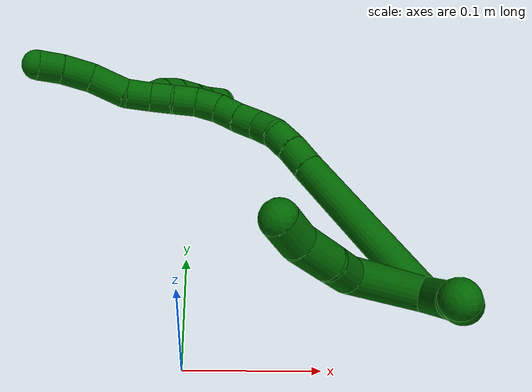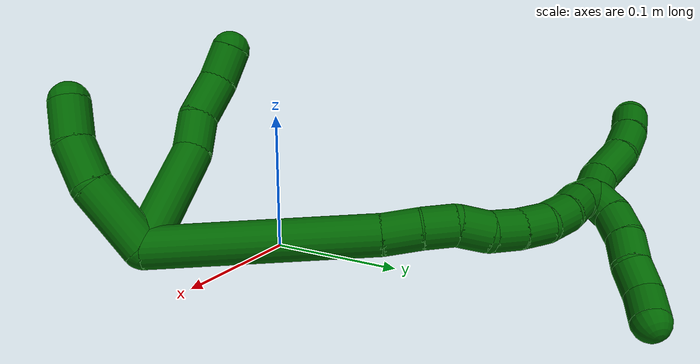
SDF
<sdf version="1.7">
 <world name="default">
  <model name="6">
   <static>0</static>
   <link name="6">
    <collision name="collision-cylinder-e_1_2_8">
     <pose>-0.010868 0.011911 -0.033235 -2.79746 -0.298627 1.42699</pose>
     <geometry><cylinder><radius>0.0125</radius><length>0.073879</length></cylinder></geometry>
     <surface>
      <friction><ode><mu>1.16</mu><mu2>1.16</mu2><slip1>0</slip1><slip2>0</slip2></ode></friction>
      <contact><ode><kp>1e+06</kp><kd>1</kd><max_vel>0</max_vel><min_depth>0.001</min_depth></ode></contact>
     </surface>
    </collision>
    <visual name="visual-cylinder-e_1_2_8">
     <pose>-0.010868 0.011911 -0.033235 -2.79746 -0.298627 1.42699</pose>
     <geometry><cylinder><radius>0.0125</radius><length>0.073879</length></cylinder></geometry>
     <material><ambient>0 0.392157 0.003922 1</ambient></material>
    </visual>
    <collision name="collision-cylinder-e_2_8_9">
     <pose>-0.027231 0.023999 -0.077381 -3.12541 -0.466478 3.0735</pose>
     <geometry><cylinder><radius>0.0125</radius><length>0.024437</length></cylinder></geometry>
     <surface>
      <friction><ode><mu>1.16</mu><mu2>1.16</mu2><slip1>0</slip1><slip2>0</slip2></ode></friction>
      <contact><ode><kp>1e+06</kp><kd>1</kd><max_vel>0</max_vel><min_depth>0.001</min_depth></ode></contact>
     </surface>
    </collision>
    <visual name="visual-cylinder-e_2_8_9">
     <pose>-0.027231 0.023999 -0.077381 -3.12541 -0.466478 3.0735</pose>
     <geometry><cylinder><radius>0.0125</radius><length>0.024437</length></cylinder></geometry>
     <material><ambient>0 0.392157 0.003922 1</ambient></material>
    </visual>
    <collision name="collision-cylinder-e_3_9_10">
     <pose>-0.040126 0.028372 -0.099769 -2.79102 -0.544492 2.01096</pose>
     <geometry><cylinder><radius>0.0125</radius><length>0.02857</length></cylinder></geometry>
     <surface>
      <friction><ode><mu>1.16</mu><mu2>1.16</mu2><slip1>0</slip1><slip2>0</slip2></ode></friction>
      <contact><ode><kp>1e+06</kp><kd>1</kd><max_vel>0</max_vel><min_depth>0.001</min_depth></ode></contact>
     </surface>
    </collision>
    <visual name="visual-cylinder-e_3_9_10">
     <pose>-0.040126 0.028372 -0.099769 -2.79102 -0.544492 2.01096</pose>
     <geometry><cylinder><radius>0.0125</radius><length>0.02857</length></cylinder></geometry>
     <material><ambient>0 0.392157 0.003922 1</ambient></material>
    </visual>
    <collision name="collision-cylinder-e_4_10_6">
     <pose>-0.055308 0.034007 -0.119666 -2.97236 -0.738859 2.7103</pose>
     <geometry><cylinder><radius>0.0125</radius><length>0.023114</length></cylinder></geometry>
     <surface>
      <friction><ode><mu>1.16</mu><mu2>1.16</mu2><slip1>0</slip1><slip2>0</slip2></ode></friction>
      <contact><ode><kp>1e+06</kp><kd>1</kd><max_vel>0</max_vel><min_depth>0.001</min_depth></ode></contact>
     </surface>
    </collision>
    <visual name="visual-cylinder-e_4_10_6">
     <pose>-0.055308 0.034007 -0.119666 -2.97236 -0.738859 2.7103</pose>
     <geometry><cylinder><radius>0.0125</radius><length>0.023114</length></cylinder></geometry>
     <material><ambient>0 0.392157 0.003922 1</ambient></material>
    </visual>
    <collision name="collision-cylinder-e_1_2_11">
     <pose>-0.003796 -0.016679 -0.01517 2.30884 -0.166796 -0.373635</pose>
     <geometry><cylinder><radius>0.0125</radius><length>0.045726</length></cylinder></geometry>
     <surface>
      <friction><ode><mu>1.16</mu><mu2>1.16</mu2><slip1>0</slip1><slip2>0</slip2></ode></friction>
      <contact><ode><kp>1e+06</kp><kd>1</kd><max_vel>0</max_vel><min_depth>0.001</min_depth></ode></contact>
     </surface>
    </collision>
    <visual name="visual-cylinder-e_1_2_11">
     <pose>-0.003796 -0.016679 -0.01517 2.30884 -0.166796 -0.373635</pose>
     <geometry><cylinder><radius>0.0125</radius><length>0.045726</length></cylinder></geometry>
     <material><ambient>0 0.392157 0.003922 1</ambient></material>
    </visual>
    <collision name="collision-cylinder-e_2_11_12">
     <pose>-0.010546 -0.040109 -0.042419 2.63198 -0.210307 -0.769978</pose>
     <geometry><cylinder><radius>0.0125</radius><length>0.028299</length></cylinder></geometry>
     <surface>
      <friction><ode><mu>1.16</mu><mu2>1.16</mu2><slip1>0</slip1><slip2>0</slip2></ode></friction>
      <contact><ode><kp>1e+06</kp><kd>1</kd><max_vel>0</max_vel><min_depth>0.001</min_depth></ode></contact>
     </surface>
    </collision>
    <visual name="visual-cylinder-e_2_11_12">
     <pose>-0.010546 -0.040109 -0.042419 2.63198 -0.210307 -0.769978</pose>
     <geometry><cylinder><radius>0.0125</radius><length>0.028299</length></cylinder></geometry>
     <material><ambient>0 0.392157 0.003922 1</ambient></material>
    </visual>
    <collision name="collision-cylinder-e_3_12_5">
     <pose>-0.018101 -0.050159 -0.066186 2.86645 -0.36218 -1.84675</pose>
     <geometry><cylinder><radius>0.0125</radius><length>0.025975</length></cylinder></geometry>
     <surface>
      <friction><ode><mu>1.16</mu><mu2>1.16</mu2><slip1>0</slip1><slip2>0</slip2></ode></friction>
      <contact><ode><kp>1e+06</kp><kd>1</kd><max_vel>0</max_vel><min_depth>0.001</min_depth></ode></contact>
     </surface>
    </collision>
    <visual name="visual-cylinder-e_3_12_5">
     <pose>-0.018101 -0.050159 -0.066186 2.86645 -0.36218 -1.84675</pose>
     <geometry><cylinder><radius>0.0125</radius><length>0.025975</length></cylinder></geometry>
     <material><ambient>0 0.392157 0.003922 1</ambient></material>
    </visual>
    <collision name="collision-cylinder-e_1_2_13">
     <pose>-0.038735 0.05471 0.010486 -1.38143 -0.607589 0.507085</pose>
     <geometry><cylinder><radius>0.0125</radius><length>0.135699</length></cylinder></geometry>
     <surface>
      <friction><ode><mu>1.16</mu><mu2>1.16</mu2><slip1>0</slip1><slip2>0</slip2></ode></friction>
      <contact><ode><kp>1e+06</kp><kd>1</kd><max_vel>0</max_vel><min_depth>0.001</min_depth></ode></contact>
     </surface>
    </collision>
    <visual name="visual-cylinder-e_1_2_13">
     <pose>-0.038735 0.05471 0.010486 -1.38143 -0.607589 0.507085</pose>
     <geometry><cylinder><radius>0.0125</radius><length>0.135699</length></cylinder></geometry>
     <material><ambient>0 0.392157 0.003922 1</ambient></material>
    </visual>
    <collision name="collision-cylinder-e_2_13_14">
     <pose>-0.084687 0.118252 0.021896 -1.46654 -0.682539 0.619299</pose>
     <geometry><cylinder><radius>0.0125</radius><length>0.022887</length></cylinder></geometry>
     <surface>
      <friction><ode><mu>1.16</mu><mu2>1.16</mu2><slip1>0</slip1><slip2>0</slip2></ode></friction>
      <contact><ode><kp>1e+06</kp><kd>1</kd><max_vel>0</max_vel><min_depth>0.001</min_depth></ode></contact>
     </surface>
    </collision>
    <visual name="visual-cylinder-e_2_13_14">
     <pose>-0.084687 0.118252 0.021896 -1.46654 -0.682539 0.619299</pose>
     <geometry><cylinder><radius>0.0125</radius><length>0.022887</length></cylinder></geometry>
     <material><ambient>0 0.392157 0.003922 1</ambient></material>
    </visual>
    <collision name="collision-cylinder-e_3_14_15">
     <pose>-0.097418 0.135629 0.023455 -1.4966 -0.571667 0.532728</pose>
     <geometry><cylinder><radius>0.0125</radius><length>0.020376</length></cylinder></geometry>
     <surface>
      <friction><ode><mu>1.16</mu><mu2>1.16</mu2><slip1>0</slip1><slip2>0</slip2></ode></friction>
      <contact><ode><kp>1e+06</kp><kd>1</kd><max_vel>0</max_vel><min_depth>0.001</min_depth></ode></contact>
     </surface>
    </collision>
    <visual name="visual-cylinder-e_3_14_15">
     <pose>-0.097418 0.135629 0.023455 -1.4966 -0.571667 0.532728</pose>
     <geometry><cylinder><radius>0.0125</radius><length>0.020376</length></cylinder></geometry>
     <material><ambient>0 0.392157 0.003922 1</ambient></material>
    </visual>
    <collision name="collision-cylinder-e_4_15_16">
     <pose>-0.105499 0.153717 0.025907 -1.38272 -0.258534 0.214345</pose>
     <geometry><cylinder><radius>0.0125</radius><length>0.020097</length></cylinder></geometry>
     <surface>
      <friction><ode><mu>1.16</mu><mu2>1.16</mu2><slip1>0</slip1><slip2>0</slip2></ode></friction>
      <contact><ode><kp>1e+06</kp><kd>1</kd><max_vel>0</max_vel><min_depth>0.001</min_depth></ode></contact>
     </surface>
    </collision>
    <visual name="visual-cylinder-e_4_15_16">
     <pose>-0.105499 0.153717 0.025907 -1.38272 -0.258534 0.214345</pose>
     <geometry><cylinder><radius>0.0125</radius><length>0.020097</length></cylinder></geometry>
     <material><ambient>0 0.392157 0.003922 1</ambient></material>
    </visual>
    <collision name="collision-cylinder-e_5_16_17">
     <pose>-0.111076 0.173116 0.026214 -1.72277 -0.292973 0.340397</pose>
     <geometry><cylinder><radius>0.0125</radius><length>0.02083</length></cylinder></geometry>
     <surface>
      <friction><ode><mu>1.16</mu><mu2>1.16</mu2><slip1>0</slip1><slip2>0</slip2></ode></friction>
      <contact><ode><kp>1e+06</kp><kd>1</kd><max_vel>0</max_vel><min_depth>0.001</min_depth></ode></contact>
     </surface>
    </collision>
    <visual name="visual-cylinder-e_5_16_17">
     <pose>-0.111076 0.173116 0.026214 -1.72277 -0.292973 0.340397</pose>
     <geometry><cylinder><radius>0.0125</radius><length>0.02083</length></cylinder></geometry>
     <material><ambient>0 0.392157 0.003922 1</ambient></material>
    </visual>
    <collision name="collision-cylinder-e_6_17_18">
     <pose>-0.117831 0.192 0.022579 -1.80202 -0.384006 0.48144</pose>
     <geometry><cylinder><radius>0.0125</radius><length>0.020006</length></cylinder></geometry>
     <surface>
      <friction><ode><mu>1.16</mu><mu2>1.16</mu2><slip1>0</slip1><slip2>0</slip2></ode></friction>
      <contact><ode><kp>1e+06</kp><kd>1</kd><max_vel>0</max_vel><min_depth>0.001</min_depth></ode></contact>
     </surface>
    </collision>
    <visual name="visual-cylinder-e_6_17_18">
     <pose>-0.117831 0.192 0.022579 -1.80202 -0.384006 0.48144</pose>
     <geometry><cylinder><radius>0.0125</radius><length>0.020006</length></cylinder></geometry>
     <material><ambient>0 0.392157 0.003922 1</ambient></material>
    </visual>
    <collision name="collision-cylinder-e_7_18_19">
     <pose>-0.12406 0.209509 0.015707 -2.08096 -0.249947 0.422133</pose>
     <geometry><cylinder><radius>0.0125</radius><length>0.020062</length></cylinder></geometry>
     <surface>
      <friction><ode><mu>1.16</mu><mu2>1.16</mu2><slip1>0</slip1><slip2>0</slip2></ode></friction>
      <contact><ode><kp>1e+06</kp><kd>1</kd><max_vel>0</max_vel><min_depth>0.001</min_depth></ode></contact>
     </surface>
    </collision>
    <visual name="visual-cylinder-e_7_18_19">
     <pose>-0.12406 0.209509 0.015707 -2.08096 -0.249947 0.422133</pose>
     <geometry><cylinder><radius>0.0125</radius><length>0.020062</length></cylinder></geometry>
     <material><ambient>0 0.392157 0.003922 1</ambient></material>
    </visual>
    <collision name="collision-cylinder-e_8_19_20">
     <pose>-0.127355 0.225535 0.00444 -2.28357 -0.081441 0.177673</pose>
     <geometry><cylinder><radius>0.0125</radius><length>0.02001</length></cylinder></geometry>
     <surface>
      <friction><ode><mu>1.16</mu><mu2>1.16</mu2><slip1>0</slip1><slip2>0</slip2></ode></friction>
      <contact><ode><kp>1e+06</kp><kd>1</kd><max_vel>0</max_vel><min_depth>0.001</min_depth></ode></contact>
     </surface>
    </collision>
    <visual name="visual-cylinder-e_8_19_20">
     <pose>-0.127355 0.225535 0.00444 -2.28357 -0.081441 0.177673</pose>
     <geometry><cylinder><radius>0.0125</radius><length>0.02001</length></cylinder></geometry>
     <material><ambient>0 0.392157 0.003922 1</ambient></material>
    </visual>
    <collision name="collision-cylinder-e_9_20_1">
     <pose>-0.129017 0.241767 -0.006994 -2.08548 -0.084821 0.145246</pose>
     <geometry><cylinder><radius>0.0125</radius><length>0.020033</length></cylinder></geometry>
     <surface>
      <friction><ode><mu>1.16</mu><mu2>1.16</mu2><slip1>0</slip1><slip2>0</slip2></ode></friction>
      <contact><ode><kp>1e+06</kp><kd>1</kd><max_vel>0</max_vel><min_depth>0.001</min_depth></ode></contact>
     </surface>
    </collision>
    <visual name="visual-cylinder-e_9_20_1">
     <pose>-0.129017 0.241767 -0.006994 -2.08548 -0.084821 0.145246</pose>
     <geometry><cylinder><radius>0.0125</radius><length>0.020033</length></cylinder></geometry>
     <material><ambient>0 0.392157 0.003922 1</ambient></material>
    </visual>
    <collision name="collision-cylinder-e_1_1_21">
     <pose>-0.132088 0.252863 -0.002459 -0.249646 -0.224082 0.028233</pose>
     <geometry><cylinder><radius>0.0125</radius><length>0.02</length></cylinder></geometry>
     <surface>
      <friction><ode><mu>1.16</mu><mu2>1.16</mu2><slip1>0</slip1><slip2>0</slip2></ode></friction>
      <contact><ode><kp>1e+06</kp><kd>1</kd><max_vel>0</max_vel><min_depth>0.001</min_depth></ode></contact>
     </surface>
    </collision>
    <visual name="visual-cylinder-e_1_1_21">
     <pose>-0.132088 0.252863 -0.002459 -0.249646 -0.224082 0.028233</pose>
     <geometry><cylinder><radius>0.0125</radius><length>0.02</length></cylinder></geometry>
     <material><ambient>0 0.392157 0.003922 1</ambient></material>
    </visual>
    <collision name="collision-cylinder-e_2_21_22">
     <pose>-0.134463 0.255222 0.016987 0.004988 -0.015277 -3.8e-05</pose>
     <geometry><cylinder><radius>0.0125</radius><length>0.02</length></cylinder></geometry>
     <surface>
      <friction><ode><mu>1.16</mu><mu2>1.16</mu2><slip1>0</slip1><slip2>0</slip2></ode></friction>
      <contact><ode><kp>1e+06</kp><kd>1</kd><max_vel>0</max_vel><min_depth>0.001</min_depth></ode></contact>
     </surface>
    </collision>
    <visual name="visual-cylinder-e_2_21_22">
     <pose>-0.134463 0.255222 0.016987 0.004988 -0.015277 -3.8e-05</pose>
     <geometry><cylinder><radius>0.0125</radius><length>0.02</length></cylinder></geometry>
     <material><ambient>0 0.392157 0.003922 1</ambient></material>
    </visual>
    <collision name="collision-cylinder-e_3_22_23">
     <pose>-0.132872 0.253925 0.036754 0.127048 0.175272 0.011177</pose>
     <geometry><cylinder><radius>0.0125</radius><length>0.02</length></cylinder></geometry>
     <surface>
      <friction><ode><mu>1.16</mu><mu2>1.16</mu2><slip1>0</slip1><slip2>0</slip2></ode></friction>
      <contact><ode><kp>1e+06</kp><kd>1</kd><max_vel>0</max_vel><min_depth>0.001</min_depth></ode></contact>
     </surface>
    </collision>
    <visual name="visual-cylinder-e_3_22_23">
     <pose>-0.132872 0.253925 0.036754 0.127048 0.175272 0.011177</pose>
     <geometry><cylinder><radius>0.0125</radius><length>0.02</length></cylinder></geometry>
     <material><ambient>0 0.392157 0.003922 1</ambient></material>
    </visual>
    <collision name="collision-cylinder-e_4_23_24">
     <pose>-0.129727 0.25379 0.05636 -0.112605 0.140599 -0.007937</pose>
     <geometry><cylinder><radius>0.0125</radius><length>0.02</length></cylinder></geometry>
     <surface>
      <friction><ode><mu>1.16</mu><mu2>1.16</mu2><slip1>0</slip1><slip2>0</slip2></ode></friction>
      <contact><ode><kp>1e+06</kp><kd>1</kd><max_vel>0</max_vel><min_depth>0.001</min_depth></ode></contact>
     </surface>
    </collision>
    <visual name="visual-cylinder-e_4_23_24">
     <pose>-0.129727 0.25379 0.05636 -0.112605 0.140599 -0.007937</pose>
     <geometry><cylinder><radius>0.0125</radius><length>0.02</length></cylinder></geometry>
     <material><ambient>0 0.392157 0.003922 1</ambient></material>
    </visual>
    <collision name="collision-cylinder-e_5_24_4">
     <pose>-0.127622 0.252811 0.075952 0.21118 0.070389 0.007463</pose>
     <geometry><cylinder><radius>0.0125</radius><length>0.02</length></cylinder></geometry>
     <surface>
      <friction><ode><mu>1.16</mu><mu2>1.16</mu2><slip1>0</slip1><slip2>0</slip2></ode></friction>
      <contact><ode><kp>1e+06</kp><kd>1</kd><max_vel>0</max_vel><min_depth>0.001</min_depth></ode></contact>
     </surface>
    </collision>
    <visual name="visual-cylinder-e_5_24_4">
     <pose>-0.127622 0.252811 0.075952 0.21118 0.070389 0.007463</pose>
     <geometry><cylinder><radius>0.0125</radius><length>0.02</length></cylinder></geometry>
     <material><ambient>0 0.392157 0.003922 1</ambient></material>
    </visual>
    <collision name="collision-cylinder-e_1_1_25">
     <pose>-0.131159 0.25704 -0.020889 -2.50893 -0.115603 0.349958</pose>
     <geometry><cylinder><radius>0.0125</radius><length>0.022426</length></cylinder></geometry>
     <surface>
      <friction><ode><mu>1.16</mu><mu2>1.16</mu2><slip1>0</slip1><slip2>0</slip2></ode></friction>
      <contact><ode><kp>1e+06</kp><kd>1</kd><max_vel>0</max_vel><min_depth>0.001</min_depth></ode></contact>
     </surface>
    </collision>
    <visual name="visual-cylinder-e_1_1_25">
     <pose>-0.131159 0.25704 -0.020889 -2.50893 -0.115603 0.349958</pose>
     <geometry><cylinder><radius>0.0125</radius><length>0.022426</length></cylinder></geometry>
     <material><ambient>0 0.392157 0.003922 1</ambient></material>
    </visual>
    <collision name="collision-cylinder-e_2_25_26">
     <pose>-0.138706 0.274045 -0.03979 -2.33157 -0.410101 0.903337</pose>
     <geometry><cylinder><radius>0.0125</radius><length>0.031371</length></cylinder></geometry>
     <surface>
      <friction><ode><mu>1.16</mu><mu2>1.16</mu2><slip1>0</slip1><slip2>0</slip2></ode></friction>
      <contact><ode><kp>1e+06</kp><kd>1</kd><max_vel>0</max_vel><min_depth>0.001</min_depth></ode></contact>
     </surface>
    </collision>
    <visual name="visual-cylinder-e_2_25_26">
     <pose>-0.138706 0.274045 -0.03979 -2.33157 -0.410101 0.903337</pose>
     <geometry><cylinder><radius>0.0125</radius><length>0.031371</length></cylinder></geometry>
     <material><ambient>0 0.392157 0.003922 1</ambient></material>
    </visual>
    <collision name="collision-cylinder-e_3_26_27">
     <pose>-0.148234 0.291553 -0.059885 -2.53322 -0.258054 0.78385</pose>
     <geometry><cylinder><radius>0.0125</radius><length>0.025654</length></cylinder></geometry>
     <surface>
      <friction><ode><mu>1.16</mu><mu2>1.16</mu2><slip1>0</slip1><slip2>0</slip2></ode></friction>
      <contact><ode><kp>1e+06</kp><kd>1</kd><max_vel>0</max_vel><min_depth>0.001</min_depth></ode></contact>
     </surface>
    </collision>
    <visual name="visual-cylinder-e_3_26_27">
     <pose>-0.148234 0.291553 -0.059885 -2.53322 -0.258054 0.78385</pose>
     <geometry><cylinder><radius>0.0125</radius><length>0.025654</length></cylinder></geometry>
     <material><ambient>0 0.392157 0.003922 1</ambient></material>
    </visual>
    <collision name="collision-cylinder-e_4_27_3">
     <pose>-0.152812 0.303315 -0.079119 -2.66514 -0.127352 0.513546</pose>
     <geometry><cylinder><radius>0.0125</radius><length>0.020548</length></cylinder></geometry>
     <surface>
      <friction><ode><mu>1.16</mu><mu2>1.16</mu2><slip1>0</slip1><slip2>0</slip2></ode></friction>
      <contact><ode><kp>1e+06</kp><kd>1</kd><max_vel>0</max_vel><min_depth>0.001</min_depth></ode></contact>
     </surface>
    </collision>
    <visual name="visual-cylinder-e_4_27_3">
     <pose>-0.152812 0.303315 -0.079119 -2.66514 -0.127352 0.513546</pose>
     <geometry><cylinder><radius>0.0125</radius><length>0.020548</length></cylinder></geometry>
     <material><ambient>0 0.392157 0.003922 1</ambient></material>
    </visual>
    <collision name="collision-sphere-3">
     <pose>-0.154117 0.307989 -0.088175 0 -0 0</pose>
     <geometry><sphere><radius>0.0125</radius></sphere></geometry>
     <surface>
      <friction><ode><mu>1.16</mu><mu2>1.16</mu2><slip1>0</slip1><slip2>0</slip2></ode></friction>
      <contact><ode><kp>1e+06</kp><kd>1</kd><max_vel>0</max_vel><min_depth>0.001</min_depth></ode></contact>
     </surface>
    </collision>
    <visual name="visual-sphere-3">
     <pose>-0.154117 0.307989 -0.088175 0 -0 0</pose>
     <geometry><sphere><radius>0.0125</radius></sphere></geometry>
     <material><ambient>0 0.392157 0.003922 1</ambient></material>
    </visual>
    <collision name="collision-sphere-27">
     <pose>-0.151507 0.298641 -0.070063 0 -0 0</pose>
     <geometry><sphere><radius>0.0125</radius></sphere></geometry>
     <surface>
      <friction><ode><mu>1.16</mu><mu2>1.16</mu2><slip1>0</slip1><slip2>0</slip2></ode></friction>
      <contact><ode><kp>1e+06</kp><kd>1</kd><max_vel>0</max_vel><min_depth>0.001</min_depth></ode></contact>
     </surface>
    </collision>
    <visual name="visual-sphere-27">
     <pose>-0.151507 0.298641 -0.070063 0 -0 0</pose>
     <geometry><sphere><radius>0.0125</radius></sphere></geometry>
     <material><ambient>0 0.392157 0.003922 1</ambient></material>
    </visual>
    <collision name="collision-sphere-26">
     <pose>-0.14496 0.284464 -0.049708 0 -0 0</pose>
     <geometry><sphere><radius>0.0125</radius></sphere></geometry>
     <surface>
      <friction><ode><mu>1.16</mu><mu2>1.16</mu2><slip1>0</slip1><slip2>0</slip2></ode></friction>
      <contact><ode><kp>1e+06</kp><kd>1</kd><max_vel>0</max_vel><min_depth>0.001</min_depth></ode></contact>
     </surface>
    </collision>
    <visual name="visual-sphere-26">
     <pose>-0.14496 0.284464 -0.049708 0 -0 0</pose>
     <geometry><sphere><radius>0.0125</radius></sphere></geometry>
     <material><ambient>0 0.392157 0.003922 1</ambient></material>
    </visual>
    <collision name="collision-sphere-25">
     <pose>-0.132453 0.263626 -0.029872 0 -0 0</pose>
     <geometry><sphere><radius>0.0125</radius></sphere></geometry>
     <surface>
      <friction><ode><mu>1.16</mu><mu2>1.16</mu2><slip1>0</slip1><slip2>0</slip2></ode></friction>
      <contact><ode><kp>1e+06</kp><kd>1</kd><max_vel>0</max_vel><min_depth>0.001</min_depth></ode></contact>
     </surface>
    </collision>
    <visual name="visual-sphere-25">
     <pose>-0.132453 0.263626 -0.029872 0 -0 0</pose>
     <geometry><sphere><radius>0.0125</radius></sphere></geometry>
     <material><ambient>0 0.392157 0.003922 1</ambient></material>
    </visual>
    <collision name="collision-sphere-4">
     <pose>-0.126919 0.25072 0.085705 0 -0 0</pose>
     <geometry><sphere><radius>0.0125</radius></sphere></geometry>
     <surface>
      <friction><ode><mu>1.16</mu><mu2>1.16</mu2><slip1>0</slip1><slip2>0</slip2></ode></friction>
      <contact><ode><kp>1e+06</kp><kd>1</kd><max_vel>0</max_vel><min_depth>0.001</min_depth></ode></contact>
     </surface>
    </collision>
    <visual name="visual-sphere-4">
     <pose>-0.126919 0.25072 0.085705 0 -0 0</pose>
     <geometry><sphere><radius>0.0125</radius></sphere></geometry>
     <material><ambient>0 0.392157 0.003922 1</ambient></material>
    </visual>
    <collision name="collision-sphere-24">
     <pose>-0.128325 0.254902 0.066198 0 -0 0</pose>
     <geometry><sphere><radius>0.0125</radius></sphere></geometry>
     <surface>
      <friction><ode><mu>1.16</mu><mu2>1.16</mu2><slip1>0</slip1><slip2>0</slip2></ode></friction>
      <contact><ode><kp>1e+06</kp><kd>1</kd><max_vel>0</max_vel><min_depth>0.001</min_depth></ode></contact>
     </surface>
    </collision>
    <visual name="visual-sphere-24">
     <pose>-0.128325 0.254902 0.066198 0 -0 0</pose>
     <geometry><sphere><radius>0.0125</radius></sphere></geometry>
     <material><ambient>0 0.392157 0.003922 1</ambient></material>
    </visual>
    <collision name="collision-sphere-23">
     <pose>-0.131128 0.252677 0.046521 0 -0 0</pose>
     <geometry><sphere><radius>0.0125</radius></sphere></geometry>
     <surface>
      <friction><ode><mu>1.16</mu><mu2>1.16</mu2><slip1>0</slip1><slip2>0</slip2></ode></friction>
      <contact><ode><kp>1e+06</kp><kd>1</kd><max_vel>0</max_vel><min_depth>0.001</min_depth></ode></contact>
     </surface>
    </collision>
    <visual name="visual-sphere-23">
     <pose>-0.131128 0.252677 0.046521 0 -0 0</pose>
     <geometry><sphere><radius>0.0125</radius></sphere></geometry>
     <material><ambient>0 0.392157 0.003922 1</ambient></material>
    </visual>
    <collision name="collision-sphere-22">
     <pose>-0.134616 0.255172 0.026986 0 -0 0</pose>
     <geometry><sphere><radius>0.0125</radius></sphere></geometry>
     <surface>
      <friction><ode><mu>1.16</mu><mu2>1.16</mu2><slip1>0</slip1><slip2>0</slip2></ode></friction>
      <contact><ode><kp>1e+06</kp><kd>1</kd><max_vel>0</max_vel><min_depth>0.001</min_depth></ode></contact>
     </surface>
    </collision>
    <visual name="visual-sphere-22">
     <pose>-0.134616 0.255172 0.026986 0 -0 0</pose>
     <geometry><sphere><radius>0.0125</radius></sphere></geometry>
     <material><ambient>0 0.392157 0.003922 1</ambient></material>
    </visual>
    <collision name="collision-sphere-21">
     <pose>-0.13431 0.255272 0.006989 0 -0 0</pose>
     <geometry><sphere><radius>0.0125</radius></sphere></geometry>
     <surface>
      <friction><ode><mu>1.16</mu><mu2>1.16</mu2><slip1>0</slip1><slip2>0</slip2></ode></friction>
      <contact><ode><kp>1e+06</kp><kd>1</kd><max_vel>0</max_vel><min_depth>0.001</min_depth></ode></contact>
     </surface>
    </collision>
    <visual name="visual-sphere-21">
     <pose>-0.13431 0.255272 0.006989 0 -0 0</pose>
     <geometry><sphere><radius>0.0125</radius></sphere></geometry>
     <material><ambient>0 0.392157 0.003922 1</ambient></material>
    </visual>
    <collision name="collision-sphere-1">
     <pose>-0.129866 0.250454 -0.011907 0 -0 0</pose>
     <geometry><sphere><radius>0.0125</radius></sphere></geometry>
     <surface>
      <friction><ode><mu>1.16</mu><mu2>1.16</mu2><slip1>0</slip1><slip2>0</slip2></ode></friction>
      <contact><ode><kp>1e+06</kp><kd>1</kd><max_vel>0</max_vel><min_depth>0.001</min_depth></ode></contact>
     </surface>
    </collision>
    <visual name="visual-sphere-1">
     <pose>-0.129866 0.250454 -0.011907 0 -0 0</pose>
     <geometry><sphere><radius>0.0125</radius></sphere></geometry>
     <material><ambient>0 0.392157 0.003922 1</ambient></material>
    </visual>
    <collision name="collision-sphere-11">
     <pose>-0.007592 -0.033358 -0.030339 0 -0 0</pose>
     <geometry><sphere><radius>0.0125</radius></sphere></geometry>
     <surface>
      <friction><ode><mu>1.16</mu><mu2>1.16</mu2><slip1>0</slip1><slip2>0</slip2></ode></friction>
      <contact><ode><kp>1e+06</kp><kd>1</kd><max_vel>0</max_vel><min_depth>0.001</min_depth></ode></contact>
     </surface>
    </collision>
    <visual name="visual-sphere-11">
     <pose>-0.007592 -0.033358 -0.030339 0 -0 0</pose>
     <geometry><sphere><radius>0.0125</radius></sphere></geometry>
     <material><ambient>0 0.392157 0.003922 1</ambient></material>
    </visual>
    <collision name="collision-sphere-6">
     <pose>-0.063091 0.035446 -0.128087 0 -0 0</pose>
     <geometry><sphere><radius>0.0125</radius></sphere></geometry>
     <surface>
      <friction><ode><mu>1.16</mu><mu2>1.16</mu2><slip1>0</slip1><slip2>0</slip2></ode></friction>
      <contact><ode><kp>1e+06</kp><kd>1</kd><max_vel>0</max_vel><min_depth>0.001</min_depth></ode></contact>
     </surface>
    </collision>
    <visual name="visual-sphere-6">
     <pose>-0.063091 0.035446 -0.128087 0 -0 0</pose>
     <geometry><sphere><radius>0.0125</radius></sphere></geometry>
     <material><ambient>0 0.392157 0.003922 1</ambient></material>
    </visual>
    <collision name="collision-sphere-10">
     <pose>-0.047525 0.032569 -0.111245 0 -0 0</pose>
     <geometry><sphere><radius>0.0125</radius></sphere></geometry>
     <surface>
      <friction><ode><mu>1.16</mu><mu2>1.16</mu2><slip1>0</slip1><slip2>0</slip2></ode></friction>
      <contact><ode><kp>1e+06</kp><kd>1</kd><max_vel>0</max_vel><min_depth>0.001</min_depth></ode></contact>
     </surface>
    </collision>
    <visual name="visual-sphere-10">
     <pose>-0.047525 0.032569 -0.111245 0 -0 0</pose>
     <geometry><sphere><radius>0.0125</radius></sphere></geometry>
     <material><ambient>0 0.392157 0.003922 1</ambient></material>
    </visual>
    <collision name="collision-sphere-9">
     <pose>-0.032726 0.024176 -0.088293 0 -0 0</pose>
     <geometry><sphere><radius>0.0125</radius></sphere></geometry>
     <surface>
      <friction><ode><mu>1.16</mu><mu2>1.16</mu2><slip1>0</slip1><slip2>0</slip2></ode></friction>
      <contact><ode><kp>1e+06</kp><kd>1</kd><max_vel>0</max_vel><min_depth>0.001</min_depth></ode></contact>
     </surface>
    </collision>
    <visual name="visual-sphere-9">
     <pose>-0.032726 0.024176 -0.088293 0 -0 0</pose>
     <geometry><sphere><radius>0.0125</radius></sphere></geometry>
     <material><ambient>0 0.392157 0.003922 1</ambient></material>
    </visual>
    <collision name="collision-sphere-2">
     <geometry><sphere><radius>0.0125</radius></sphere></geometry>
     <surface>
      <friction><ode><mu>1.16</mu><mu2>1.16</mu2><slip1>0</slip1><slip2>0</slip2></ode></friction>
      <contact><ode><kp>1e+06</kp><kd>1</kd><max_vel>0</max_vel><min_depth>0.001</min_depth></ode></contact>
     </surface>
    </collision>
    <visual name="visual-sphere-2">
     <geometry><sphere><radius>0.0125</radius></sphere></geometry>
     <material><ambient>0 0.392157 0.003922 1</ambient></material>
    </visual>
    <collision name="collision-sphere-19">
     <pose>-0.126541 0.217991 0.010961 0 -0 0</pose>
     <geometry><sphere><radius>0.0125</radius></sphere></geometry>
     <surface>
      <friction><ode><mu>1.16</mu><mu2>1.16</mu2><slip1>0</slip1><slip2>0</slip2></ode></friction>
      <contact><ode><kp>1e+06</kp><kd>1</kd><max_vel>0</max_vel><min_depth>0.001</min_depth></ode></contact>
     </surface>
    </collision>
    <visual name="visual-sphere-19">
     <pose>-0.126541 0.217991 0.010961 0 -0 0</pose>
     <geometry><sphere><radius>0.0125</radius></sphere></geometry>
     <material><ambient>0 0.392157 0.003922 1</ambient></material>
    </visual>
    <collision name="collision-sphere-8">
     <pose>-0.021736 0.023822 -0.066469 0 -0 0</pose>
     <geometry><sphere><radius>0.0125</radius></sphere></geometry>
     <surface>
      <friction><ode><mu>1.16</mu><mu2>1.16</mu2><slip1>0</slip1><slip2>0</slip2></ode></friction>
      <contact><ode><kp>1e+06</kp><kd>1</kd><max_vel>0</max_vel><min_depth>0.001</min_depth></ode></contact>
     </surface>
    </collision>
    <visual name="visual-sphere-8">
     <pose>-0.021736 0.023822 -0.066469 0 -0 0</pose>
     <geometry><sphere><radius>0.0125</radius></sphere></geometry>
     <material><ambient>0 0.392157 0.003922 1</ambient></material>
    </visual>
    <collision name="collision-sphere-12">
     <pose>-0.013499 -0.046859 -0.054498 0 -0 0</pose>
     <geometry><sphere><radius>0.0125</radius></sphere></geometry>
     <surface>
      <friction><ode><mu>1.16</mu><mu2>1.16</mu2><slip1>0</slip1><slip2>0</slip2></ode></friction>
      <contact><ode><kp>1e+06</kp><kd>1</kd><max_vel>0</max_vel><min_depth>0.001</min_depth></ode></contact>
     </surface>
    </collision>
    <visual name="visual-sphere-12">
     <pose>-0.013499 -0.046859 -0.054498 0 -0 0</pose>
     <geometry><sphere><radius>0.0125</radius></sphere></geometry>
     <material><ambient>0 0.392157 0.003922 1</ambient></material>
    </visual>
    <collision name="collision-sphere-5">
     <pose>-0.022703 -0.053459 -0.077874 0 -0 0</pose>
     <geometry><sphere><radius>0.0125</radius></sphere></geometry>
     <surface>
      <friction><ode><mu>1.16</mu><mu2>1.16</mu2><slip1>0</slip1><slip2>0</slip2></ode></friction>
      <contact><ode><kp>1e+06</kp><kd>1</kd><max_vel>0</max_vel><min_depth>0.001</min_depth></ode></contact>
     </surface>
    </collision>
    <visual name="visual-sphere-5">
     <pose>-0.022703 -0.053459 -0.077874 0 -0 0</pose>
     <geometry><sphere><radius>0.0125</radius></sphere></geometry>
     <material><ambient>0 0.392157 0.003922 1</ambient></material>
    </visual>
    <collision name="collision-sphere-13">
     <pose>-0.077469 0.109421 0.020972 0 -0 0</pose>
     <geometry><sphere><radius>0.0125</radius></sphere></geometry>
     <surface>
      <friction><ode><mu>1.16</mu><mu2>1.16</mu2><slip1>0</slip1><slip2>0</slip2></ode></friction>
      <contact><ode><kp>1e+06</kp><kd>1</kd><max_vel>0</max_vel><min_depth>0.001</min_depth></ode></contact>
     </surface>
    </collision>
    <visual name="visual-sphere-13">
     <pose>-0.077469 0.109421 0.020972 0 -0 0</pose>
     <geometry><sphere><radius>0.0125</radius></sphere></geometry>
     <material><ambient>0 0.392157 0.003922 1</ambient></material>
    </visual>
    <collision name="collision-sphere-14">
     <pose>-0.091906 0.127084 0.02282 0 -0 0</pose>
     <geometry><sphere><radius>0.0125</radius></sphere></geometry>
     <surface>
      <friction><ode><mu>1.16</mu><mu2>1.16</mu2><slip1>0</slip1><slip2>0</slip2></ode></friction>
      <contact><ode><kp>1e+06</kp><kd>1</kd><max_vel>0</max_vel><min_depth>0.001</min_depth></ode></contact>
     </surface>
    </collision>
    <visual name="visual-sphere-14">
     <pose>-0.091906 0.127084 0.02282 0 -0 0</pose>
     <geometry><sphere><radius>0.0125</radius></sphere></geometry>
     <material><ambient>0 0.392157 0.003922 1</ambient></material>
    </visual>
    <collision name="collision-sphere-15">
     <pose>-0.10293 0.144173 0.02409 0 -0 0</pose>
     <geometry><sphere><radius>0.0125</radius></sphere></geometry>
     <surface>
      <friction><ode><mu>1.16</mu><mu2>1.16</mu2><slip1>0</slip1><slip2>0</slip2></ode></friction>
      <contact><ode><kp>1e+06</kp><kd>1</kd><max_vel>0</max_vel><min_depth>0.001</min_depth></ode></contact>
     </surface>
    </collision>
    <visual name="visual-sphere-15">
     <pose>-0.10293 0.144173 0.02409 0 -0 0</pose>
     <geometry><sphere><radius>0.0125</radius></sphere></geometry>
     <material><ambient>0 0.392157 0.003922 1</ambient></material>
    </visual>
    <collision name="collision-sphere-16">
     <pose>-0.108068 0.16326 0.027723 0 -0 0</pose>
     <geometry><sphere><radius>0.0125</radius></sphere></geometry>
     <surface>
      <friction><ode><mu>1.16</mu><mu2>1.16</mu2><slip1>0</slip1><slip2>0</slip2></ode></friction>
      <contact><ode><kp>1e+06</kp><kd>1</kd><max_vel>0</max_vel><min_depth>0.001</min_depth></ode></contact>
     </surface>
    </collision>
    <visual name="visual-sphere-16">
     <pose>-0.108068 0.16326 0.027723 0 -0 0</pose>
     <geometry><sphere><radius>0.0125</radius></sphere></geometry>
     <material><ambient>0 0.392157 0.003922 1</ambient></material>
    </visual>
    <collision name="collision-sphere-17">
     <pose>-0.114084 0.182973 0.024704 0 -0 0</pose>
     <geometry><sphere><radius>0.0125</radius></sphere></geometry>
     <surface>
      <friction><ode><mu>1.16</mu><mu2>1.16</mu2><slip1>0</slip1><slip2>0</slip2></ode></friction>
      <contact><ode><kp>1e+06</kp><kd>1</kd><max_vel>0</max_vel><min_depth>0.001</min_depth></ode></contact>
     </surface>
    </collision>
    <visual name="visual-sphere-17">
     <pose>-0.114084 0.182973 0.024704 0 -0 0</pose>
     <geometry><sphere><radius>0.0125</radius></sphere></geometry>
     <material><ambient>0 0.392157 0.003922 1</ambient></material>
    </visual>
    <collision name="collision-sphere-18">
     <pose>-0.121578 0.201028 0.020453 0 -0 0</pose>
     <geometry><sphere><radius>0.0125</radius></sphere></geometry>
     <surface>
      <friction><ode><mu>1.16</mu><mu2>1.16</mu2><slip1>0</slip1><slip2>0</slip2></ode></friction>
      <contact><ode><kp>1e+06</kp><kd>1</kd><max_vel>0</max_vel><min_depth>0.001</min_depth></ode></contact>
     </surface>
    </collision>
    <visual name="visual-sphere-18">
     <pose>-0.121578 0.201028 0.020453 0 -0 0</pose>
     <geometry><sphere><radius>0.0125</radius></sphere></geometry>
     <material><ambient>0 0.392157 0.003922 1</ambient></material>
    </visual>
    <collision name="collision-sphere-20">
     <pose>-0.128169 0.233079 -0.002081 0 -0 0</pose>
     <geometry><sphere><radius>0.0125</radius></sphere></geometry>
     <surface>
      <friction><ode><mu>1.16</mu><mu2>1.16</mu2><slip1>0</slip1><slip2>0</slip2></ode></friction>
      <contact><ode><kp>1e+06</kp><kd>1</kd><max_vel>0</max_vel><min_depth>0.001</min_depth></ode></contact>
     </surface>
    </collision>
    <visual name="visual-sphere-20">
     <pose>-0.128169 0.233079 -0.002081 0 -0 0</pose>
     <geometry><sphere><radius>0.0125</radius></sphere></geometry>
     <material><ambient>0 0.392157 0.003922 1</ambient></material>
    </visual>
    <inertial>
     <pose>-0.074399 0.120398 -0.014131 0 -0 0</pose>
     <mass>0.75</mass>
     <inertia>
      <ixx>0.000295</ixx>
      <ixy>0</ixy>
      <ixz>0</ixz>
      <iyy>0.000241</iyy>
      <iyz>0</iyz>
      <izz>-6.1e-05</izz>
     </inertia>
    </inertial>
   </link>
   <pose>0.167419 0.028569 0.055329 -2.48974 0.878136 -1.60092</pose>
  </model>
 </world>
</sdf>
